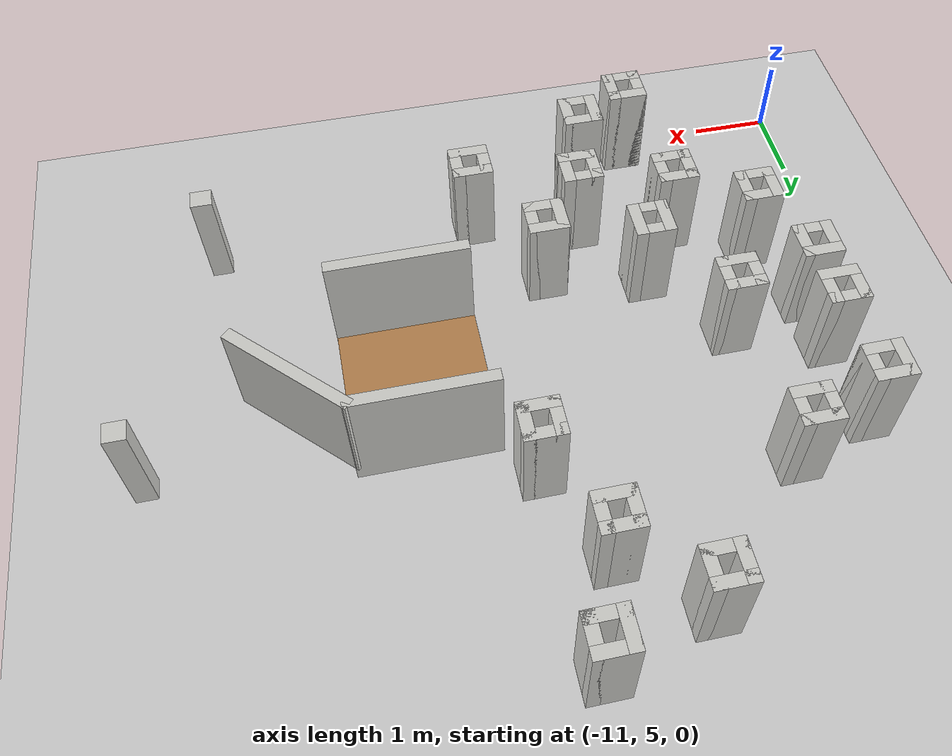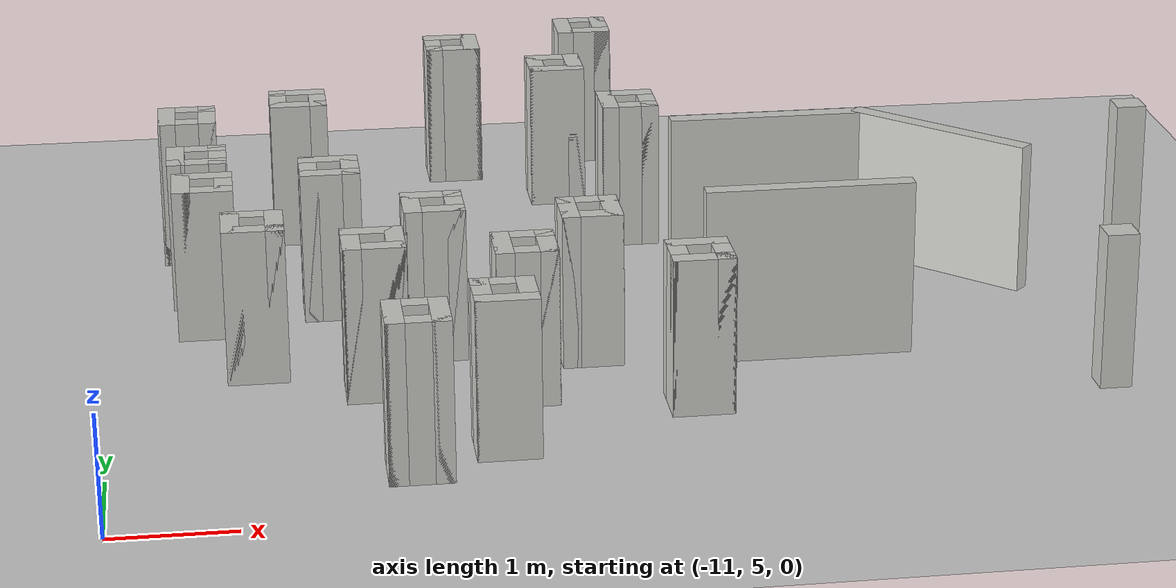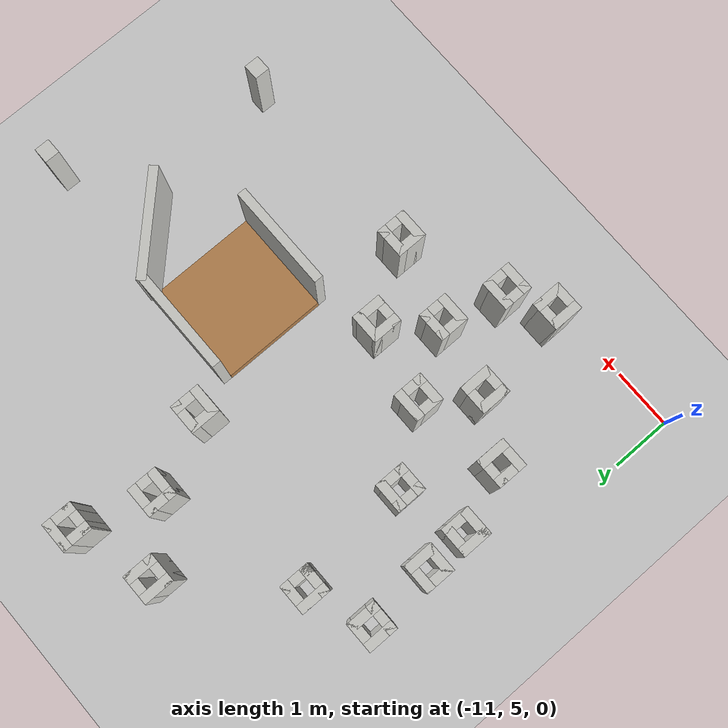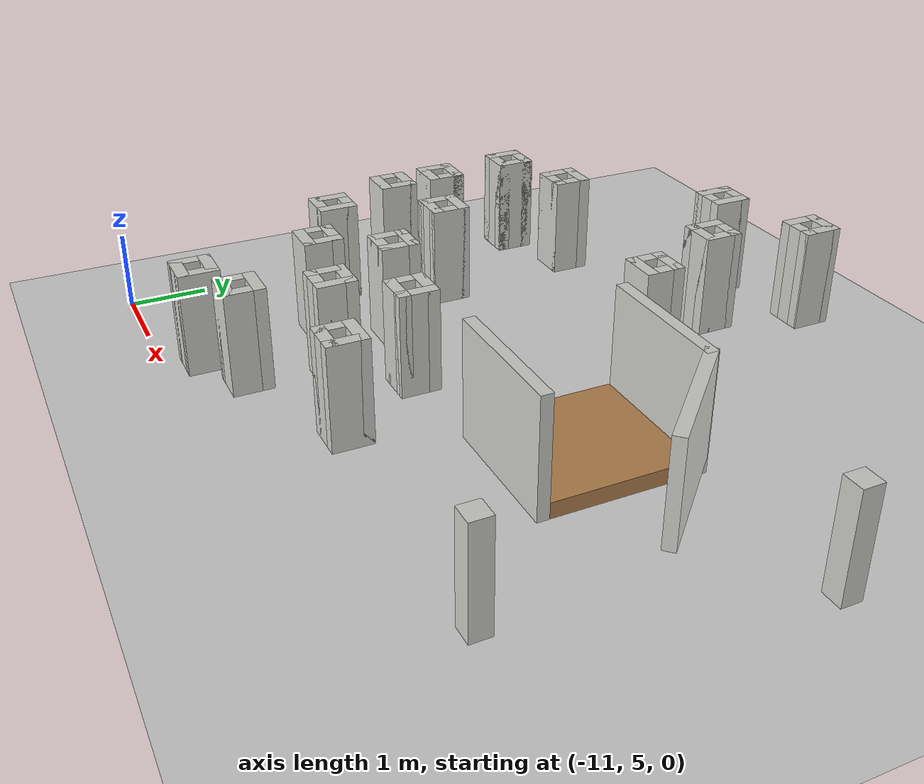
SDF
<sdf version="1.6">
 <world name="default">
  <model name="ground_plane">
   <static>1</static>
   <link name="link">
    <collision name="collision">
     <geometry><plane><normal>0 0 1</normal><size>100 100</size></plane></geometry>
     <surface><friction><ode><mu>100</mu><mu2>50</mu2></ode></friction></surface>
    </collision>
    <visual name="visual">
     <cast_shadows>0</cast_shadows>
     <geometry><plane><normal>0 0 1</normal><size>100 100</size></plane></geometry>
     <material>
      <script><uri>file://media/materials/scripts/gazebo.material</uri><name>Gazebo/Grey</name></script>
     </material>
    </visual>
   </link>
  </model>
  <model name="nerve_straight_clone_0_clone_0_clone_0">
   <pose>-5.22994 8.71415 0 0 0 -1.5708</pose>
   <link name="Wall_0">
    <collision name="Wall_0_Collision">
     <geometry><box><size>1.76 1.75 0.2</size></box></geometry>
     <pose>0 0 0.1 0 -0 0</pose>
    </collision>
    <visual name="Wall_0_Visual">
     <pose>0 0 0.1 0 -0 0</pose>
     <geometry><box><size>1.76 1.75 0.2</size></box></geometry>
     <material>
      <script><uri>file://media/materials/scripts/gazebo.material</uri><name>Gazebo/Wood</name></script>
      <ambient>1 0.764706 0.305882 1</ambient>
     </material>
    </visual>
    <pose>0.005 -0.002 0 0 -0 3.14159</pose>
   </link>
   <link name="Wall_2">
    <collision name="Wall_2_Collision">
     <geometry><box><size>1.75 0.15 1.5</size></box></geometry>
     <pose>0 0 0.75 0 -0 0</pose>
    </collision>
    <visual name="Wall_2_Visual">
     <pose>0 0 0.75 0 -0 0</pose>
     <geometry><box><size>1.75 0.15 1.5</size></box></geometry>
     <material>
      <script><uri>file://media/materials/scripts/gazebo.material</uri><name>Gazebo/CeilingTiled</name></script>
      <ambient>1 0.764706 0.305882 1</ambient>
     </material>
    </visual>
    <pose>-0.955 0.002 0 0 0 -1.5708</pose>
   </link>
   <link name="Wall_4">
    <collision name="Wall_4_Collision">
     <geometry><box><size>1.75 0.15 1.5</size></box></geometry>
     <pose>0 0 0.75 0 -0 0</pose>
    </collision>
    <visual name="Wall_4_Visual">
     <pose>0 0 0.75 0 -0 0</pose>
     <geometry><box><size>1.75 0.15 1.5</size></box></geometry>
     <material>
      <script><uri>file://media/materials/scripts/gazebo.material</uri><name>Gazebo/CeilingTiled</name></script>
      <ambient>1 0.764706 0.305882 1</ambient>
     </material>
    </visual>
    <pose>0.955 0.002 0 0 0 -1.5708</pose>
   </link>
   <static>1</static>
  </model>
  <model name="nerve_obs_wall_full_clone_4">
   <pose>-3.82232 9.09799 0.2 0 0 -0.785398</pose>
   <link name="Wall_21">
    <collision name="Wall_21_Collision">
     <geometry><box><size>1.75 0.15 1.3</size></box></geometry>
     <pose>0 0 0.65 0 -0 0</pose>
    </collision>
    <visual name="Wall_21_Visual">
     <pose>0 0 0.65 0 -0 0</pose>
     <geometry><box><size>1.75 0.15 1.3</size></box></geometry>
     <material>
      <script><uri>file://media/materials/scripts/gazebo.material</uri><name>Gazebo/CeilingTiled</name></script>
      <ambient>1 0.764706 0.305882 1</ambient>
     </material>
    </visual>
   </link>
   <static>1</static>
  </model>
  <model name="nerve_obs_squarepillar_large">
   <pose>-7.09065 7.50735 0.2 0 -0 0</pose>
   <link name="Wall_31">
    <collision name="Wall_31_Collision">
     <geometry><box><size>0.5 0.15 1.3</size></box></geometry>
     <pose>0 0 0.65 0 -0 0</pose>
    </collision>
    <visual name="Wall_31_Visual">
     <pose>0 0 0.65 0 -0 0</pose>
     <geometry><box><size>0.5 0.15 1.3</size></box></geometry>
     <material>
      <script><uri>file://media/materials/scripts/gazebo.material</uri><name>Gazebo/CeilingTiled</name></script>
      <ambient>1 0.764706 0.305882 1</ambient>
     </material>
    </visual>
    <pose>-0.175 0 0 0 0 -1.5708</pose>
   </link>
   <link name="Wall_32">
    <collision name="Wall_32_Collision">
     <geometry><box><size>0.5 0.15 1.3</size></box></geometry>
     <pose>0 0 0.65 0 -0 0</pose>
    </collision>
    <visual name="Wall_32_Visual">
     <pose>0 0 0.65 0 -0 0</pose>
     <geometry><box><size>0.5 0.15 1.3</size></box></geometry>
     <material>
      <script><uri>file://media/materials/scripts/gazebo.material</uri><name>Gazebo/CeilingTiled</name></script>
      <ambient>1 0.764706 0.305882 1</ambient>
     </material>
    </visual>
    <pose>0 -0.175 0 0 -0 0</pose>
   </link>
   <link name="Wall_33">
    <collision name="Wall_33_Collision">
     <geometry><box><size>0.5 0.15 1.3</size></box></geometry>
     <pose>0 0 0.65 0 -0 0</pose>
    </collision>
    <visual name="Wall_33_Visual">
     <pose>0 0 0.65 0 -0 0</pose>
     <geometry><box><size>0.5 0.15 1.3</size></box></geometry>
     <material>
      <script><uri>file://media/materials/scripts/gazebo.material</uri><name>Gazebo/CeilingTiled</name></script>
      <ambient>1 0.764706 0.305882 1</ambient>
     </material>
    </visual>
    <pose>0.175 0 0 0 -0 1.5708</pose>
   </link>
   <link name="Wall_34">
    <collision name="Wall_34_Collision">
     <geometry><box><size>0.5 0.15 1.3</size></box></geometry>
     <pose>0 0 0.65 0 -0 0</pose>
    </collision>
    <visual name="Wall_34_Visual">
     <pose>0 0 0.65 0 -0 0</pose>
     <geometry><box><size>0.5 0.15 1.3</size></box></geometry>
     <material>
      <script><uri>file://media/materials/scripts/gazebo.material</uri><name>Gazebo/CeilingTiled</name></script>
      <ambient>1 0.764706 0.305882 1</ambient>
     </material>
    </visual>
    <pose>0 0.175 0 0 -0 3.14159</pose>
   </link>
   <static>1</static>
  </model>
  <model name="nerve_obs_squarepillar_large_clone">
   <pose>-6.36147 6.39902 0.2 0 -0 0</pose>
   <link name="Wall_31">
    <collision name="Wall_31_Collision">
     <geometry><box><size>0.5 0.15 1.3</size></box></geometry>
     <pose>0 0 0.65 0 -0 0</pose>
    </collision>
    <visual name="Wall_31_Visual">
     <pose>0 0 0.65 0 -0 0</pose>
     <geometry><box><size>0.5 0.15 1.3</size></box></geometry>
     <material>
      <script><uri>file://media/materials/scripts/gazebo.material</uri><name>Gazebo/CeilingTiled</name></script>
      <ambient>1 0.764706 0.305882 1</ambient>
     </material>
    </visual>
    <pose>-0.175 0 0 0 0 -1.5708</pose>
   </link>
   <link name="Wall_32">
    <collision name="Wall_32_Collision">
     <geometry><box><size>0.5 0.15 1.3</size></box></geometry>
     <pose>0 0 0.65 0 -0 0</pose>
    </collision>
    <visual name="Wall_32_Visual">
     <pose>0 0 0.65 0 -0 0</pose>
     <geometry><box><size>0.5 0.15 1.3</size></box></geometry>
     <material>
      <script><uri>file://media/materials/scripts/gazebo.material</uri><name>Gazebo/CeilingTiled</name></script>
      <ambient>1 0.764706 0.305882 1</ambient>
     </material>
    </visual>
    <pose>0 -0.175 0 0 -0 0</pose>
   </link>
   <link name="Wall_33">
    <collision name="Wall_33_Collision">
     <geometry><box><size>0.5 0.15 1.3</size></box></geometry>
     <pose>0 0 0.65 0 -0 0</pose>
    </collision>
    <visual name="Wall_33_Visual">
     <pose>0 0 0.65 0 -0 0</pose>
     <geometry><box><size>0.5 0.15 1.3</size></box></geometry>
     <material>
      <script><uri>file://media/materials/scripts/gazebo.material</uri><name>Gazebo/CeilingTiled</name></script>
      <ambient>1 0.764706 0.305882 1</ambient>
     </material>
    </visual>
    <pose>0.175 0 0 0 -0 1.5708</pose>
   </link>
   <link name="Wall_34">
    <collision name="Wall_34_Collision">
     <geometry><box><size>0.5 0.15 1.3</size></box></geometry>
     <pose>0 0 0.65 0 -0 0</pose>
    </collision>
    <visual name="Wall_34_Visual">
     <pose>0 0 0.65 0 -0 0</pose>
     <geometry><box><size>0.5 0.15 1.3</size></box></geometry>
     <material>
      <script><uri>file://media/materials/scripts/gazebo.material</uri><name>Gazebo/CeilingTiled</name></script>
      <ambient>1 0.764706 0.305882 1</ambient>
     </material>
    </visual>
    <pose>0 0.175 0 0 -0 3.14159</pose>
   </link>
   <static>1</static>
  </model>
  <model name="nerve_obs_squarepillar_large_clone_0">
   <pose>-9.30834 10.7359 0.2 0 -0 0</pose>
   <link name="Wall_31">
    <collision name="Wall_31_Collision">
     <geometry><box><size>0.5 0.15 1.3</size></box></geometry>
     <pose>0 0 0.65 0 -0 0</pose>
    </collision>
    <visual name="Wall_31_Visual">
     <pose>0 0 0.65 0 -0 0</pose>
     <geometry><box><size>0.5 0.15 1.3</size></box></geometry>
     <material>
      <script><uri>file://media/materials/scripts/gazebo.material</uri><name>Gazebo/CeilingTiled</name></script>
      <ambient>1 0.764706 0.305882 1</ambient>
     </material>
    </visual>
    <pose>-0.175 0 0 0 0 -1.5708</pose>
   </link>
   <link name="Wall_32">
    <collision name="Wall_32_Collision">
     <geometry><box><size>0.5 0.15 1.3</size></box></geometry>
     <pose>0 0 0.65 0 -0 0</pose>
    </collision>
    <visual name="Wall_32_Visual">
     <pose>0 0 0.65 0 -0 0</pose>
     <geometry><box><size>0.5 0.15 1.3</size></box></geometry>
     <material>
      <script><uri>file://media/materials/scripts/gazebo.material</uri><name>Gazebo/CeilingTiled</name></script>
      <ambient>1 0.764706 0.305882 1</ambient>
     </material>
    </visual>
    <pose>0 -0.175 0 0 -0 0</pose>
   </link>
   <link name="Wall_33">
    <collision name="Wall_33_Collision">
     <geometry><box><size>0.5 0.15 1.3</size></box></geometry>
     <pose>0 0 0.65 0 -0 0</pose>
    </collision>
    <visual name="Wall_33_Visual">
     <pose>0 0 0.65 0 -0 0</pose>
     <geometry><box><size>0.5 0.15 1.3</size></box></geometry>
     <material>
      <script><uri>file://media/materials/scripts/gazebo.material</uri><name>Gazebo/CeilingTiled</name></script>
      <ambient>1 0.764706 0.305882 1</ambient>
     </material>
    </visual>
    <pose>0.175 0 0 0 -0 1.5708</pose>
   </link>
   <link name="Wall_34">
    <collision name="Wall_34_Collision">
     <geometry><box><size>0.5 0.15 1.3</size></box></geometry>
     <pose>0 0 0.65 0 -0 0</pose>
    </collision>
    <visual name="Wall_34_Visual">
     <pose>0 0 0.65 0 -0 0</pose>
     <geometry><box><size>0.5 0.15 1.3</size></box></geometry>
     <material>
      <script><uri>file://media/materials/scripts/gazebo.material</uri><name>Gazebo/CeilingTiled</name></script>
      <ambient>1 0.764706 0.305882 1</ambient>
     </material>
    </visual>
    <pose>0 0.175 0 0 -0 3.14159</pose>
   </link>
   <static>1</static>
  </model>
  <model name="nerve_obs_squarepillar_large_clone_2">
   <pose>-9.12124 8.82989 0.2 0 -0 0</pose>
   <link name="Wall_31">
    <collision name="Wall_31_Collision">
     <geometry><box><size>0.5 0.15 1.3</size></box></geometry>
     <pose>0 0 0.65 0 -0 0</pose>
    </collision>
    <visual name="Wall_31_Visual">
     <pose>0 0 0.65 0 -0 0</pose>
     <geometry><box><size>0.5 0.15 1.3</size></box></geometry>
     <material>
      <script><uri>file://media/materials/scripts/gazebo.material</uri><name>Gazebo/CeilingTiled</name></script>
      <ambient>1 0.764706 0.305882 1</ambient>
     </material>
    </visual>
    <pose>-0.175 0 0 0 0 -1.5708</pose>
   </link>
   <link name="Wall_32">
    <collision name="Wall_32_Collision">
     <geometry><box><size>0.5 0.15 1.3</size></box></geometry>
     <pose>0 0 0.65 0 -0 0</pose>
    </collision>
    <visual name="Wall_32_Visual">
     <pose>0 0 0.65 0 -0 0</pose>
     <geometry><box><size>0.5 0.15 1.3</size></box></geometry>
     <material>
      <script><uri>file://media/materials/scripts/gazebo.material</uri><name>Gazebo/CeilingTiled</name></script>
      <ambient>1 0.764706 0.305882 1</ambient>
     </material>
    </visual>
    <pose>0 -0.175 0 0 -0 0</pose>
   </link>
   <link name="Wall_33">
    <collision name="Wall_33_Collision">
     <geometry><box><size>0.5 0.15 1.3</size></box></geometry>
     <pose>0 0 0.65 0 -0 0</pose>
    </collision>
    <visual name="Wall_33_Visual">
     <pose>0 0 0.65 0 -0 0</pose>
     <geometry><box><size>0.5 0.15 1.3</size></box></geometry>
     <material>
      <script><uri>file://media/materials/scripts/gazebo.material</uri><name>Gazebo/CeilingTiled</name></script>
      <ambient>1 0.764706 0.305882 1</ambient>
     </material>
    </visual>
    <pose>0.175 0 0 0 -0 1.5708</pose>
   </link>
   <link name="Wall_34">
    <collision name="Wall_34_Collision">
     <geometry><box><size>0.5 0.15 1.3</size></box></geometry>
     <pose>0 0 0.65 0 -0 0</pose>
    </collision>
    <visual name="Wall_34_Visual">
     <pose>0 0 0.65 0 -0 0</pose>
     <geometry><box><size>0.5 0.15 1.3</size></box></geometry>
     <material>
      <script><uri>file://media/materials/scripts/gazebo.material</uri><name>Gazebo/CeilingTiled</name></script>
      <ambient>1 0.764706 0.305882 1</ambient>
     </material>
    </visual>
    <pose>0 0.175 0 0 -0 3.14159</pose>
   </link>
   <static>1</static>
  </model>
  <model name="nerve_obs_squarepillar_large_clone_3">
   <pose>-8.33446 7.80328 0.2 0 -0 0</pose>
   <link name="Wall_31">
    <collision name="Wall_31_Collision">
     <geometry><box><size>0.5 0.15 1.3</size></box></geometry>
     <pose>0 0 0.65 0 -0 0</pose>
    </collision>
    <visual name="Wall_31_Visual">
     <pose>0 0 0.65 0 -0 0</pose>
     <geometry><box><size>0.5 0.15 1.3</size></box></geometry>
     <material>
      <script><uri>file://media/materials/scripts/gazebo.material</uri><name>Gazebo/CeilingTiled</name></script>
      <ambient>1 0.764706 0.305882 1</ambient>
     </material>
    </visual>
    <pose>-0.175 0 0 0 0 -1.5708</pose>
   </link>
   <link name="Wall_32">
    <collision name="Wall_32_Collision">
     <geometry><box><size>0.5 0.15 1.3</size></box></geometry>
     <pose>0 0 0.65 0 -0 0</pose>
    </collision>
    <visual name="Wall_32_Visual">
     <pose>0 0 0.65 0 -0 0</pose>
     <geometry><box><size>0.5 0.15 1.3</size></box></geometry>
     <material>
      <script><uri>file://media/materials/scripts/gazebo.material</uri><name>Gazebo/CeilingTiled</name></script>
      <ambient>1 0.764706 0.305882 1</ambient>
     </material>
    </visual>
    <pose>0 -0.175 0 0 -0 0</pose>
   </link>
   <link name="Wall_33">
    <collision name="Wall_33_Collision">
     <geometry><box><size>0.5 0.15 1.3</size></box></geometry>
     <pose>0 0 0.65 0 -0 0</pose>
    </collision>
    <visual name="Wall_33_Visual">
     <pose>0 0 0.65 0 -0 0</pose>
     <geometry><box><size>0.5 0.15 1.3</size></box></geometry>
     <material>
      <script><uri>file://media/materials/scripts/gazebo.material</uri><name>Gazebo/CeilingTiled</name></script>
      <ambient>1 0.764706 0.305882 1</ambient>
     </material>
    </visual>
    <pose>0.175 0 0 0 -0 1.5708</pose>
   </link>
   <link name="Wall_34">
    <collision name="Wall_34_Collision">
     <geometry><box><size>0.5 0.15 1.3</size></box></geometry>
     <pose>0 0 0.65 0 -0 0</pose>
    </collision>
    <visual name="Wall_34_Visual">
     <pose>0 0 0.65 0 -0 0</pose>
     <geometry><box><size>0.5 0.15 1.3</size></box></geometry>
     <material>
      <script><uri>file://media/materials/scripts/gazebo.material</uri><name>Gazebo/CeilingTiled</name></script>
      <ambient>1 0.764706 0.305882 1</ambient>
     </material>
    </visual>
    <pose>0 0.175 0 0 -0 3.14159</pose>
   </link>
   <static>1</static>
  </model>
  <model name="nerve_obs_squarepillar_large_clone_4">
   <pose>-8.86642 7.01573 0.2 0 -0 0</pose>
   <link name="Wall_31">
    <collision name="Wall_31_Collision">
     <geometry><box><size>0.5 0.15 1.3</size></box></geometry>
     <pose>0 0 0.65 0 -0 0</pose>
    </collision>
    <visual name="Wall_31_Visual">
     <pose>0 0 0.65 0 -0 0</pose>
     <geometry><box><size>0.5 0.15 1.3</size></box></geometry>
     <material>
      <script><uri>file://media/materials/scripts/gazebo.material</uri><name>Gazebo/CeilingTiled</name></script>
      <ambient>1 0.764706 0.305882 1</ambient>
     </material>
    </visual>
    <pose>-0.175 0 0 0 0 -1.5708</pose>
   </link>
   <link name="Wall_32">
    <collision name="Wall_32_Collision">
     <geometry><box><size>0.5 0.15 1.3</size></box></geometry>
     <pose>0 0 0.65 0 -0 0</pose>
    </collision>
    <visual name="Wall_32_Visual">
     <pose>0 0 0.65 0 -0 0</pose>
     <geometry><box><size>0.5 0.15 1.3</size></box></geometry>
     <material>
      <script><uri>file://media/materials/scripts/gazebo.material</uri><name>Gazebo/CeilingTiled</name></script>
      <ambient>1 0.764706 0.305882 1</ambient>
     </material>
    </visual>
    <pose>0 -0.175 0 0 -0 0</pose>
   </link>
   <link name="Wall_33">
    <collision name="Wall_33_Collision">
     <geometry><box><size>0.5 0.15 1.3</size></box></geometry>
     <pose>0 0 0.65 0 -0 0</pose>
    </collision>
    <visual name="Wall_33_Visual">
     <pose>0 0 0.65 0 -0 0</pose>
     <geometry><box><size>0.5 0.15 1.3</size></box></geometry>
     <material>
      <script><uri>file://media/materials/scripts/gazebo.material</uri><name>Gazebo/CeilingTiled</name></script>
      <ambient>1 0.764706 0.305882 1</ambient>
     </material>
    </visual>
    <pose>0.175 0 0 0 -0 1.5708</pose>
   </link>
   <link name="Wall_34">
    <collision name="Wall_34_Collision">
     <geometry><box><size>0.5 0.15 1.3</size></box></geometry>
     <pose>0 0 0.65 0 -0 0</pose>
    </collision>
    <visual name="Wall_34_Visual">
     <pose>0 0 0.65 0 -0 0</pose>
     <geometry><box><size>0.5 0.15 1.3</size></box></geometry>
     <material>
      <script><uri>file://media/materials/scripts/gazebo.material</uri><name>Gazebo/CeilingTiled</name></script>
      <ambient>1 0.764706 0.305882 1</ambient>
     </material>
    </visual>
    <pose>0 0.175 0 0 -0 3.14159</pose>
   </link>
   <static>1</static>
  </model>
  <model name="nerve_obs_squarepillar_large_clone_5">
   <pose>-8.64189 5.42133 0.2 0 -0 0</pose>
   <link name="Wall_31">
    <collision name="Wall_31_Collision">
     <geometry><box><size>0.5 0.15 1.3</size></box></geometry>
     <pose>0 0 0.65 0 -0 0</pose>
    </collision>
    <visual name="Wall_31_Visual">
     <pose>0 0 0.65 0 -0 0</pose>
     <geometry><box><size>0.5 0.15 1.3</size></box></geometry>
     <material>
      <script><uri>file://media/materials/scripts/gazebo.material</uri><name>Gazebo/CeilingTiled</name></script>
      <ambient>1 0.764706 0.305882 1</ambient>
     </material>
    </visual>
    <pose>-0.175 0 0 0 0 -1.5708</pose>
   </link>
   <link name="Wall_32">
    <collision name="Wall_32_Collision">
     <geometry><box><size>0.5 0.15 1.3</size></box></geometry>
     <pose>0 0 0.65 0 -0 0</pose>
    </collision>
    <visual name="Wall_32_Visual">
     <pose>0 0 0.65 0 -0 0</pose>
     <geometry><box><size>0.5 0.15 1.3</size></box></geometry>
     <material>
      <script><uri>file://media/materials/scripts/gazebo.material</uri><name>Gazebo/CeilingTiled</name></script>
      <ambient>1 0.764706 0.305882 1</ambient>
     </material>
    </visual>
    <pose>0 -0.175 0 0 -0 0</pose>
   </link>
   <link name="Wall_33">
    <collision name="Wall_33_Collision">
     <geometry><box><size>0.5 0.15 1.3</size></box></geometry>
     <pose>0 0 0.65 0 -0 0</pose>
    </collision>
    <visual name="Wall_33_Visual">
     <pose>0 0 0.65 0 -0 0</pose>
     <geometry><box><size>0.5 0.15 1.3</size></box></geometry>
     <material>
      <script><uri>file://media/materials/scripts/gazebo.material</uri><name>Gazebo/CeilingTiled</name></script>
      <ambient>1 0.764706 0.305882 1</ambient>
     </material>
    </visual>
    <pose>0.175 0 0 0 -0 1.5708</pose>
   </link>
   <link name="Wall_34">
    <collision name="Wall_34_Collision">
     <geometry><box><size>0.5 0.15 1.3</size></box></geometry>
     <pose>0 0 0.65 0 -0 0</pose>
    </collision>
    <visual name="Wall_34_Visual">
     <pose>0 0 0.65 0 -0 0</pose>
     <geometry><box><size>0.5 0.15 1.3</size></box></geometry>
     <material>
      <script><uri>file://media/materials/scripts/gazebo.material</uri><name>Gazebo/CeilingTiled</name></script>
      <ambient>1 0.764706 0.305882 1</ambient>
     </material>
    </visual>
    <pose>0 0.175 0 0 -0 3.14159</pose>
   </link>
   <static>1</static>
  </model>
  <model name="nerve_obs_squarepillar_large_clone_11">
   <pose>-6.51462 12.6919 0.2 0 -0 0</pose>
   <link name="Wall_31">
    <collision name="Wall_31_Collision">
     <geometry><box><size>0.5 0.15 1.3</size></box></geometry>
     <pose>0 0 0.65 0 -0 0</pose>
    </collision>
    <visual name="Wall_31_Visual">
     <pose>0 0 0.65 0 -0 0</pose>
     <geometry><box><size>0.5 0.15 1.3</size></box></geometry>
     <material>
      <script><uri>file://media/materials/scripts/gazebo.material</uri><name>Gazebo/CeilingTiled</name></script>
      <ambient>1 0.764706 0.305882 1</ambient>
     </material>
    </visual>
    <pose>-0.175 0 0 0 0 -1.5708</pose>
   </link>
   <link name="Wall_32">
    <collision name="Wall_32_Collision">
     <geometry><box><size>0.5 0.15 1.3</size></box></geometry>
     <pose>0 0 0.65 0 -0 0</pose>
    </collision>
    <visual name="Wall_32_Visual">
     <pose>0 0 0.65 0 -0 0</pose>
     <geometry><box><size>0.5 0.15 1.3</size></box></geometry>
     <material>
      <script><uri>file://media/materials/scripts/gazebo.material</uri><name>Gazebo/CeilingTiled</name></script>
      <ambient>1 0.764706 0.305882 1</ambient>
     </material>
    </visual>
    <pose>0 -0.175 0 0 -0 0</pose>
   </link>
   <link name="Wall_33">
    <collision name="Wall_33_Collision">
     <geometry><box><size>0.5 0.15 1.3</size></box></geometry>
     <pose>0 0 0.65 0 -0 0</pose>
    </collision>
    <visual name="Wall_33_Visual">
     <pose>0 0 0.65 0 -0 0</pose>
     <geometry><box><size>0.5 0.15 1.3</size></box></geometry>
     <material>
      <script><uri>file://media/materials/scripts/gazebo.material</uri><name>Gazebo/CeilingTiled</name></script>
      <ambient>1 0.764706 0.305882 1</ambient>
     </material>
    </visual>
    <pose>0.175 0 0 0 -0 1.5708</pose>
   </link>
   <link name="Wall_34">
    <collision name="Wall_34_Collision">
     <geometry><box><size>0.5 0.15 1.3</size></box></geometry>
     <pose>0 0 0.65 0 -0 0</pose>
    </collision>
    <visual name="Wall_34_Visual">
     <pose>0 0 0.65 0 -0 0</pose>
     <geometry><box><size>0.5 0.15 1.3</size></box></geometry>
     <material>
      <script><uri>file://media/materials/scripts/gazebo.material</uri><name>Gazebo/CeilingTiled</name></script>
      <ambient>1 0.764706 0.305882 1</ambient>
     </material>
    </visual>
    <pose>0 0.175 0 0 -0 3.14159</pose>
   </link>
   <static>1</static>
  </model>
  <model name="nerve_obs_squarepillar_large_clone_12">
   <pose>-7.80044 12.2815 0.2 0 -0 0</pose>
   <link name="Wall_31">
    <collision name="Wall_31_Collision">
     <geometry><box><size>0.5 0.15 1.3</size></box></geometry>
     <pose>0 0 0.65 0 -0 0</pose>
    </collision>
    <visual name="Wall_31_Visual">
     <pose>0 0 0.65 0 -0 0</pose>
     <geometry><box><size>0.5 0.15 1.3</size></box></geometry>
     <material>
      <script><uri>file://media/materials/scripts/gazebo.material</uri><name>Gazebo/CeilingTiled</name></script>
      <ambient>1 0.764706 0.305882 1</ambient>
     </material>
    </visual>
    <pose>-0.175 0 0 0 0 -1.5708</pose>
   </link>
   <link name="Wall_32">
    <collision name="Wall_32_Collision">
     <geometry><box><size>0.5 0.15 1.3</size></box></geometry>
     <pose>0 0 0.65 0 -0 0</pose>
    </collision>
    <visual name="Wall_32_Visual">
     <pose>0 0 0.65 0 -0 0</pose>
     <geometry><box><size>0.5 0.15 1.3</size></box></geometry>
     <material>
      <script><uri>file://media/materials/scripts/gazebo.material</uri><name>Gazebo/CeilingTiled</name></script>
      <ambient>1 0.764706 0.305882 1</ambient>
     </material>
    </visual>
    <pose>0 -0.175 0 0 -0 0</pose>
   </link>
   <link name="Wall_33">
    <collision name="Wall_33_Collision">
     <geometry><box><size>0.5 0.15 1.3</size></box></geometry>
     <pose>0 0 0.65 0 -0 0</pose>
    </collision>
    <visual name="Wall_33_Visual">
     <pose>0 0 0.65 0 -0 0</pose>
     <geometry><box><size>0.5 0.15 1.3</size></box></geometry>
     <material>
      <script><uri>file://media/materials/scripts/gazebo.material</uri><name>Gazebo/CeilingTiled</name></script>
      <ambient>1 0.764706 0.305882 1</ambient>
     </material>
    </visual>
    <pose>0.175 0 0 0 -0 1.5708</pose>
   </link>
   <link name="Wall_34">
    <collision name="Wall_34_Collision">
     <geometry><box><size>0.5 0.15 1.3</size></box></geometry>
     <pose>0 0 0.65 0 -0 0</pose>
    </collision>
    <visual name="Wall_34_Visual">
     <pose>0 0 0.65 0 -0 0</pose>
     <geometry><box><size>0.5 0.15 1.3</size></box></geometry>
     <material>
      <script><uri>file://media/materials/scripts/gazebo.material</uri><name>Gazebo/CeilingTiled</name></script>
      <ambient>1 0.764706 0.305882 1</ambient>
     </material>
    </visual>
    <pose>0 0.175 0 0 -0 3.14159</pose>
   </link>
   <static>1</static>
  </model>
  <model name="nerve_obs_squarepillar_large_clone_15">
   <pose>-10.2143 9.26065 0.2 0 -0 0</pose>
   <link name="Wall_31">
    <collision name="Wall_31_Collision">
     <geometry><box><size>0.5 0.15 1.3</size></box></geometry>
     <pose>0 0 0.65 0 -0 0</pose>
    </collision>
    <visual name="Wall_31_Visual">
     <pose>0 0 0.65 0 -0 0</pose>
     <geometry><box><size>0.5 0.15 1.3</size></box></geometry>
     <material>
      <script><uri>file://media/materials/scripts/gazebo.material</uri><name>Gazebo/CeilingTiled</name></script>
      <ambient>1 0.764706 0.305882 1</ambient>
     </material>
    </visual>
    <pose>-0.175 0 0 0 0 -1.5708</pose>
   </link>
   <link name="Wall_32">
    <collision name="Wall_32_Collision">
     <geometry><box><size>0.5 0.15 1.3</size></box></geometry>
     <pose>0 0 0.65 0 -0 0</pose>
    </collision>
    <visual name="Wall_32_Visual">
     <pose>0 0 0.65 0 -0 0</pose>
     <geometry><box><size>0.5 0.15 1.3</size></box></geometry>
     <material>
      <script><uri>file://media/materials/scripts/gazebo.material</uri><name>Gazebo/CeilingTiled</name></script>
      <ambient>1 0.764706 0.305882 1</ambient>
     </material>
    </visual>
    <pose>0 -0.175 0 0 -0 0</pose>
   </link>
   <link name="Wall_33">
    <collision name="Wall_33_Collision">
     <geometry><box><size>0.5 0.15 1.3</size></box></geometry>
     <pose>0 0 0.65 0 -0 0</pose>
    </collision>
    <visual name="Wall_33_Visual">
     <pose>0 0 0.65 0 -0 0</pose>
     <geometry><box><size>0.5 0.15 1.3</size></box></geometry>
     <material>
      <script><uri>file://media/materials/scripts/gazebo.material</uri><name>Gazebo/CeilingTiled</name></script>
      <ambient>1 0.764706 0.305882 1</ambient>
     </material>
    </visual>
    <pose>0.175 0 0 0 -0 1.5708</pose>
   </link>
   <link name="Wall_34">
    <collision name="Wall_34_Collision">
     <geometry><box><size>0.5 0.15 1.3</size></box></geometry>
     <pose>0 0 0.65 0 -0 0</pose>
    </collision>
    <visual name="Wall_34_Visual">
     <pose>0 0 0.65 0 -0 0</pose>
     <geometry><box><size>0.5 0.15 1.3</size></box></geometry>
     <material>
      <script><uri>file://media/materials/scripts/gazebo.material</uri><name>Gazebo/CeilingTiled</name></script>
      <ambient>1 0.764706 0.305882 1</ambient>
     </material>
    </visual>
    <pose>0 0.175 0 0 -0 3.14159</pose>
   </link>
   <static>1</static>
  </model>
  <model name="nerve_obs_squarepillar_large_clone_16">
   <pose>-10.2904 10.3693 0.2 0 -0 0</pose>
   <link name="Wall_31">
    <collision name="Wall_31_Collision">
     <geometry><box><size>0.5 0.15 1.3</size></box></geometry>
     <pose>0 0 0.65 0 -0 0</pose>
    </collision>
    <visual name="Wall_31_Visual">
     <pose>0 0 0.65 0 -0 0</pose>
     <geometry><box><size>0.5 0.15 1.3</size></box></geometry>
     <material>
      <script><uri>file://media/materials/scripts/gazebo.material</uri><name>Gazebo/CeilingTiled</name></script>
      <ambient>1 0.764706 0.305882 1</ambient>
     </material>
    </visual>
    <pose>-0.175 0 0 0 0 -1.5708</pose>
   </link>
   <link name="Wall_32">
    <collision name="Wall_32_Collision">
     <geometry><box><size>0.5 0.15 1.3</size></box></geometry>
     <pose>0 0 0.65 0 -0 0</pose>
    </collision>
    <visual name="Wall_32_Visual">
     <pose>0 0 0.65 0 -0 0</pose>
     <geometry><box><size>0.5 0.15 1.3</size></box></geometry>
     <material>
      <script><uri>file://media/materials/scripts/gazebo.material</uri><name>Gazebo/CeilingTiled</name></script>
      <ambient>1 0.764706 0.305882 1</ambient>
     </material>
    </visual>
    <pose>0 -0.175 0 0 -0 0</pose>
   </link>
   <link name="Wall_33">
    <collision name="Wall_33_Collision">
     <geometry><box><size>0.5 0.15 1.3</size></box></geometry>
     <pose>0 0 0.65 0 -0 0</pose>
    </collision>
    <visual name="Wall_33_Visual">
     <pose>0 0 0.65 0 -0 0</pose>
     <geometry><box><size>0.5 0.15 1.3</size></box></geometry>
     <material>
      <script><uri>file://media/materials/scripts/gazebo.material</uri><name>Gazebo/CeilingTiled</name></script>
      <ambient>1 0.764706 0.305882 1</ambient>
     </material>
    </visual>
    <pose>0.175 0 0 0 -0 1.5708</pose>
   </link>
   <link name="Wall_34">
    <collision name="Wall_34_Collision">
     <geometry><box><size>0.5 0.15 1.3</size></box></geometry>
     <pose>0 0 0.65 0 -0 0</pose>
    </collision>
    <visual name="Wall_34_Visual">
     <pose>0 0 0.65 0 -0 0</pose>
     <geometry><box><size>0.5 0.15 1.3</size></box></geometry>
     <material>
      <script><uri>file://media/materials/scripts/gazebo.material</uri><name>Gazebo/CeilingTiled</name></script>
      <ambient>1 0.764706 0.305882 1</ambient>
     </material>
    </visual>
    <pose>0 0.175 0 0 -0 3.14159</pose>
   </link>
   <static>1</static>
  </model>
  <model name="nerve_obs_squarepillar_large_clone_17">
   <pose>-6.39783 10.3049 0.2 0 -0 0</pose>
   <link name="Wall_31">
    <collision name="Wall_31_Collision">
     <geometry><box><size>0.5 0.15 1.3</size></box></geometry>
     <pose>0 0 0.65 0 -0 0</pose>
    </collision>
    <visual name="Wall_31_Visual">
     <pose>0 0 0.65 0 -0 0</pose>
     <geometry><box><size>0.5 0.15 1.3</size></box></geometry>
     <material>
      <script><uri>file://media/materials/scripts/gazebo.material</uri><name>Gazebo/CeilingTiled</name></script>
      <ambient>1 0.764706 0.305882 1</ambient>
     </material>
    </visual>
    <pose>-0.175 0 0 0 0 -1.5708</pose>
   </link>
   <link name="Wall_32">
    <collision name="Wall_32_Collision">
     <geometry><box><size>0.5 0.15 1.3</size></box></geometry>
     <pose>0 0 0.65 0 -0 0</pose>
    </collision>
    <visual name="Wall_32_Visual">
     <pose>0 0 0.65 0 -0 0</pose>
     <geometry><box><size>0.5 0.15 1.3</size></box></geometry>
     <material>
      <script><uri>file://media/materials/scripts/gazebo.material</uri><name>Gazebo/CeilingTiled</name></script>
      <ambient>1 0.764706 0.305882 1</ambient>
     </material>
    </visual>
    <pose>0 -0.175 0 0 -0 0</pose>
   </link>
   <link name="Wall_33">
    <collision name="Wall_33_Collision">
     <geometry><box><size>0.5 0.15 1.3</size></box></geometry>
     <pose>0 0 0.65 0 -0 0</pose>
    </collision>
    <visual name="Wall_33_Visual">
     <pose>0 0 0.65 0 -0 0</pose>
     <geometry><box><size>0.5 0.15 1.3</size></box></geometry>
     <material>
      <script><uri>file://media/materials/scripts/gazebo.material</uri><name>Gazebo/CeilingTiled</name></script>
      <ambient>1 0.764706 0.305882 1</ambient>
     </material>
    </visual>
    <pose>0.175 0 0 0 -0 1.5708</pose>
   </link>
   <link name="Wall_34">
    <collision name="Wall_34_Collision">
     <geometry><box><size>0.5 0.15 1.3</size></box></geometry>
     <pose>0 0 0.65 0 -0 0</pose>
    </collision>
    <visual name="Wall_34_Visual">
     <pose>0 0 0.65 0 -0 0</pose>
     <geometry><box><size>0.5 0.15 1.3</size></box></geometry>
     <material>
      <script><uri>file://media/materials/scripts/gazebo.material</uri><name>Gazebo/CeilingTiled</name></script>
      <ambient>1 0.764706 0.305882 1</ambient>
     </material>
    </visual>
    <pose>0 0.175 0 0 -0 3.14159</pose>
   </link>
   <static>1</static>
  </model>
  <model name="nerve_obs_squarepillar_large_clone_18">
   <pose>-6.91212 11.4966 0.2 0 -0 0</pose>
   <link name="Wall_31">
    <collision name="Wall_31_Collision">
     <geometry><box><size>0.5 0.15 1.3</size></box></geometry>
     <pose>0 0 0.65 0 -0 0</pose>
    </collision>
    <visual name="Wall_31_Visual">
     <pose>0 0 0.65 0 -0 0</pose>
     <geometry><box><size>0.5 0.15 1.3</size></box></geometry>
     <material>
      <script><uri>file://media/materials/scripts/gazebo.material</uri><name>Gazebo/CeilingTiled</name></script>
      <ambient>1 0.764706 0.305882 1</ambient>
     </material>
    </visual>
    <pose>-0.175 0 0 0 0 -1.5708</pose>
   </link>
   <link name="Wall_32">
    <collision name="Wall_32_Collision">
     <geometry><box><size>0.5 0.15 1.3</size></box></geometry>
     <pose>0 0 0.65 0 -0 0</pose>
    </collision>
    <visual name="Wall_32_Visual">
     <pose>0 0 0.65 0 -0 0</pose>
     <geometry><box><size>0.5 0.15 1.3</size></box></geometry>
     <material>
      <script><uri>file://media/materials/scripts/gazebo.material</uri><name>Gazebo/CeilingTiled</name></script>
      <ambient>1 0.764706 0.305882 1</ambient>
     </material>
    </visual>
    <pose>0 -0.175 0 0 -0 0</pose>
   </link>
   <link name="Wall_33">
    <collision name="Wall_33_Collision">
     <geometry><box><size>0.5 0.15 1.3</size></box></geometry>
     <pose>0 0 0.65 0 -0 0</pose>
    </collision>
    <visual name="Wall_33_Visual">
     <pose>0 0 0.65 0 -0 0</pose>
     <geometry><box><size>0.5 0.15 1.3</size></box></geometry>
     <material>
      <script><uri>file://media/materials/scripts/gazebo.material</uri><name>Gazebo/CeilingTiled</name></script>
      <ambient>1 0.764706 0.305882 1</ambient>
     </material>
    </visual>
    <pose>0.175 0 0 0 -0 1.5708</pose>
   </link>
   <link name="Wall_34">
    <collision name="Wall_34_Collision">
     <geometry><box><size>0.5 0.15 1.3</size></box></geometry>
     <pose>0 0 0.65 0 -0 0</pose>
    </collision>
    <visual name="Wall_34_Visual">
     <pose>0 0 0.65 0 -0 0</pose>
     <geometry><box><size>0.5 0.15 1.3</size></box></geometry>
     <material>
      <script><uri>file://media/materials/scripts/gazebo.material</uri><name>Gazebo/CeilingTiled</name></script>
      <ambient>1 0.764706 0.305882 1</ambient>
     </material>
    </visual>
    <pose>0 0.175 0 0 -0 3.14159</pose>
   </link>
   <static>1</static>
  </model>
  <model name="nerve_obs_squarepillar_large_clone_20">
   <pose>-7.95187 5.76572 0.2 0 -0 0</pose>
   <link name="Wall_31">
    <collision name="Wall_31_Collision">
     <geometry><box><size>0.5 0.15 1.3</size></box></geometry>
     <pose>0 0 0.65 0 -0 0</pose>
    </collision>
    <visual name="Wall_31_Visual">
     <pose>0 0 0.65 0 -0 0</pose>
     <geometry><box><size>0.5 0.15 1.3</size></box></geometry>
     <material>
      <script><uri>file://media/materials/scripts/gazebo.material</uri><name>Gazebo/CeilingTiled</name></script>
      <ambient>1 0.764706 0.305882 1</ambient>
     </material>
    </visual>
    <pose>-0.175 0 0 0 0 -1.5708</pose>
   </link>
   <link name="Wall_32">
    <collision name="Wall_32_Collision">
     <geometry><box><size>0.5 0.15 1.3</size></box></geometry>
     <pose>0 0 0.65 0 -0 0</pose>
    </collision>
    <visual name="Wall_32_Visual">
     <pose>0 0 0.65 0 -0 0</pose>
     <geometry><box><size>0.5 0.15 1.3</size></box></geometry>
     <material>
      <script><uri>file://media/materials/scripts/gazebo.material</uri><name>Gazebo/CeilingTiled</name></script>
      <ambient>1 0.764706 0.305882 1</ambient>
     </material>
    </visual>
    <pose>0 -0.175 0 0 -0 0</pose>
   </link>
   <link name="Wall_33">
    <collision name="Wall_33_Collision">
     <geometry><box><size>0.5 0.15 1.3</size></box></geometry>
     <pose>0 0 0.65 0 -0 0</pose>
    </collision>
    <visual name="Wall_33_Visual">
     <pose>0 0 0.65 0 -0 0</pose>
     <geometry><box><size>0.5 0.15 1.3</size></box></geometry>
     <material>
      <script><uri>file://media/materials/scripts/gazebo.material</uri><name>Gazebo/CeilingTiled</name></script>
      <ambient>1 0.764706 0.305882 1</ambient>
     </material>
    </visual>
    <pose>0.175 0 0 0 -0 1.5708</pose>
   </link>
   <link name="Wall_34">
    <collision name="Wall_34_Collision">
     <geometry><box><size>0.5 0.15 1.3</size></box></geometry>
     <pose>0 0 0.65 0 -0 0</pose>
    </collision>
    <visual name="Wall_34_Visual">
     <pose>0 0 0.65 0 -0 0</pose>
     <geometry><box><size>0.5 0.15 1.3</size></box></geometry>
     <material>
      <script><uri>file://media/materials/scripts/gazebo.material</uri><name>Gazebo/CeilingTiled</name></script>
      <ambient>1 0.764706 0.305882 1</ambient>
     </material>
    </visual>
    <pose>0 0.175 0 0 -0 3.14159</pose>
   </link>
   <static>1</static>
  </model>
  <model name="nerve_obs_squarepillar_large_clone_21">
   <pose>-7.69646 6.76413 0.2 0 -0 0</pose>
   <link name="Wall_31">
    <collision name="Wall_31_Collision">
     <geometry><box><size>0.5 0.15 1.3</size></box></geometry>
     <pose>0 0 0.65 0 -0 0</pose>
    </collision>
    <visual name="Wall_31_Visual">
     <pose>0 0 0.65 0 -0 0</pose>
     <geometry><box><size>0.5 0.15 1.3</size></box></geometry>
     <material>
      <script><uri>file://media/materials/scripts/gazebo.material</uri><name>Gazebo/CeilingTiled</name></script>
      <ambient>1 0.764706 0.305882 1</ambient>
     </material>
    </visual>
    <pose>-0.175 0 0 0 0 -1.5708</pose>
   </link>
   <link name="Wall_32">
    <collision name="Wall_32_Collision">
     <geometry><box><size>0.5 0.15 1.3</size></box></geometry>
     <pose>0 0 0.65 0 -0 0</pose>
    </collision>
    <visual name="Wall_32_Visual">
     <pose>0 0 0.65 0 -0 0</pose>
     <geometry><box><size>0.5 0.15 1.3</size></box></geometry>
     <material>
      <script><uri>file://media/materials/scripts/gazebo.material</uri><name>Gazebo/CeilingTiled</name></script>
      <ambient>1 0.764706 0.305882 1</ambient>
     </material>
    </visual>
    <pose>0 -0.175 0 0 -0 0</pose>
   </link>
   <link name="Wall_33">
    <collision name="Wall_33_Collision">
     <geometry><box><size>0.5 0.15 1.3</size></box></geometry>
     <pose>0 0 0.65 0 -0 0</pose>
    </collision>
    <visual name="Wall_33_Visual">
     <pose>0 0 0.65 0 -0 0</pose>
     <geometry><box><size>0.5 0.15 1.3</size></box></geometry>
     <material>
      <script><uri>file://media/materials/scripts/gazebo.material</uri><name>Gazebo/CeilingTiled</name></script>
      <ambient>1 0.764706 0.305882 1</ambient>
     </material>
    </visual>
    <pose>0.175 0 0 0 -0 1.5708</pose>
   </link>
   <link name="Wall_34">
    <collision name="Wall_34_Collision">
     <geometry><box><size>0.5 0.15 1.3</size></box></geometry>
     <pose>0 0 0.65 0 -0 0</pose>
    </collision>
    <visual name="Wall_34_Visual">
     <pose>0 0 0.65 0 -0 0</pose>
     <geometry><box><size>0.5 0.15 1.3</size></box></geometry>
     <material>
      <script><uri>file://media/materials/scripts/gazebo.material</uri><name>Gazebo/CeilingTiled</name></script>
      <ambient>1 0.764706 0.305882 1</ambient>
     </material>
    </visual>
    <pose>0 0.175 0 0 -0 3.14159</pose>
   </link>
   <static>1</static>
  </model>
  <model name="nerve_obs_squarepillar_large_clone_30">
   <pose>-9.79269 7.53777 0.2 0 -0 0</pose>
   <link name="Wall_31">
    <collision name="Wall_31_Collision">
     <geometry><box><size>0.5 0.15 1.3</size></box></geometry>
     <pose>0 0 0.65 0 -0 0</pose>
    </collision>
    <visual name="Wall_31_Visual">
     <pose>0 0 0.65 0 -0 0</pose>
     <geometry><box><size>0.5 0.15 1.3</size></box></geometry>
     <material>
      <script><uri>file://media/materials/scripts/gazebo.material</uri><name>Gazebo/CeilingTiled</name></script>
      <ambient>1 0.764706 0.305882 1</ambient>
     </material>
    </visual>
    <pose>-0.175 0 0 0 0 -1.5708</pose>
   </link>
   <link name="Wall_32">
    <collision name="Wall_32_Collision">
     <geometry><box><size>0.5 0.15 1.3</size></box></geometry>
     <pose>0 0 0.65 0 -0 0</pose>
    </collision>
    <visual name="Wall_32_Visual">
     <pose>0 0 0.65 0 -0 0</pose>
     <geometry><box><size>0.5 0.15 1.3</size></box></geometry>
     <material>
      <script><uri>file://media/materials/scripts/gazebo.material</uri><name>Gazebo/CeilingTiled</name></script>
      <ambient>1 0.764706 0.305882 1</ambient>
     </material>
    </visual>
    <pose>0 -0.175 0 0 -0 0</pose>
   </link>
   <link name="Wall_33">
    <collision name="Wall_33_Collision">
     <geometry><box><size>0.5 0.15 1.3</size></box></geometry>
     <pose>0 0 0.65 0 -0 0</pose>
    </collision>
    <visual name="Wall_33_Visual">
     <pose>0 0 0.65 0 -0 0</pose>
     <geometry><box><size>0.5 0.15 1.3</size></box></geometry>
     <material>
      <script><uri>file://media/materials/scripts/gazebo.material</uri><name>Gazebo/CeilingTiled</name></script>
      <ambient>1 0.764706 0.305882 1</ambient>
     </material>
    </visual>
    <pose>0.175 0 0 0 -0 1.5708</pose>
   </link>
   <link name="Wall_34">
    <collision name="Wall_34_Collision">
     <geometry><box><size>0.5 0.15 1.3</size></box></geometry>
     <pose>0 0 0.65 0 -0 0</pose>
    </collision>
    <visual name="Wall_34_Visual">
     <pose>0 0 0.65 0 -0 0</pose>
     <geometry><box><size>0.5 0.15 1.3</size></box></geometry>
     <material>
      <script><uri>file://media/materials/scripts/gazebo.material</uri><name>Gazebo/CeilingTiled</name></script>
      <ambient>1 0.764706 0.305882 1</ambient>
     </material>
    </visual>
    <pose>0 0.175 0 0 -0 3.14159</pose>
   </link>
   <static>1</static>
  </model>
  <model name="nerve_obs_squarepillar_large_clone_31">
   <pose>-10.1766 8.54336 0.2 0 -0 0</pose>
   <link name="Wall_31">
    <collision name="Wall_31_Collision">
     <geometry><box><size>0.5 0.15 1.3</size></box></geometry>
     <pose>0 0 0.65 0 -0 0</pose>
    </collision>
    <visual name="Wall_31_Visual">
     <pose>0 0 0.65 0 -0 0</pose>
     <geometry><box><size>0.5 0.15 1.3</size></box></geometry>
     <material>
      <script><uri>file://media/materials/scripts/gazebo.material</uri><name>Gazebo/CeilingTiled</name></script>
      <ambient>1 0.764706 0.305882 1</ambient>
     </material>
    </visual>
    <pose>-0.175 0 0 0 0 -1.5708</pose>
   </link>
   <link name="Wall_32">
    <collision name="Wall_32_Collision">
     <geometry><box><size>0.5 0.15 1.3</size></box></geometry>
     <pose>0 0 0.65 0 -0 0</pose>
    </collision>
    <visual name="Wall_32_Visual">
     <pose>0 0 0.65 0 -0 0</pose>
     <geometry><box><size>0.5 0.15 1.3</size></box></geometry>
     <material>
      <script><uri>file://media/materials/scripts/gazebo.material</uri><name>Gazebo/CeilingTiled</name></script>
      <ambient>1 0.764706 0.305882 1</ambient>
     </material>
    </visual>
    <pose>0 -0.175 0 0 -0 0</pose>
   </link>
   <link name="Wall_33">
    <collision name="Wall_33_Collision">
     <geometry><box><size>0.5 0.15 1.3</size></box></geometry>
     <pose>0 0 0.65 0 -0 0</pose>
    </collision>
    <visual name="Wall_33_Visual">
     <pose>0 0 0.65 0 -0 0</pose>
     <geometry><box><size>0.5 0.15 1.3</size></box></geometry>
     <material>
      <script><uri>file://media/materials/scripts/gazebo.material</uri><name>Gazebo/CeilingTiled</name></script>
      <ambient>1 0.764706 0.305882 1</ambient>
     </material>
    </visual>
    <pose>0.175 0 0 0 -0 1.5708</pose>
   </link>
   <link name="Wall_34">
    <collision name="Wall_34_Collision">
     <geometry><box><size>0.5 0.15 1.3</size></box></geometry>
     <pose>0 0 0.65 0 -0 0</pose>
    </collision>
    <visual name="Wall_34_Visual">
     <pose>0 0 0.65 0 -0 0</pose>
     <geometry><box><size>0.5 0.15 1.3</size></box></geometry>
     <material>
      <script><uri>file://media/materials/scripts/gazebo.material</uri><name>Gazebo/CeilingTiled</name></script>
      <ambient>1 0.764706 0.305882 1</ambient>
     </material>
    </visual>
    <pose>0 0.175 0 0 -0 3.14159</pose>
   </link>
   <static>1</static>
  </model>
  <model name="nerve_obs_squarepillar_small_clone_41">
   <pose>-3.01551 6.34888 0.2 0 -0 0</pose>
   <link name="Wall_40">
    <collision name="Wall_40_Collision">
     <geometry><box><size>0.26 0.25 1.3</size></box></geometry>
     <pose>0 0 0.65 0 -0 0</pose>
    </collision>
    <visual name="Wall_40_Visual">
     <pose>0 0 0.65 0 -0 0</pose>
     <geometry><box><size>0.26 0.25 1.3</size></box></geometry>
     <material>
      <script><uri>file://media/materials/scripts/gazebo.material</uri><name>Gazebo/CeilingTiled</name></script>
      <ambient>1 0.764706 0.305882 1</ambient>
     </material>
    </visual>
   </link>
   <static>1</static>
  </model>
  <model name="nerve_obs_squarepillar_small_clone_43">
   <pose>-2.00421 9.53299 0.2 0 -0 0</pose>
   <link name="Wall_40">
    <collision name="Wall_40_Collision">
     <geometry><box><size>0.26 0.25 1.3</size></box></geometry>
     <pose>0 0 0.65 0 -0 0</pose>
    </collision>
    <visual name="Wall_40_Visual">
     <pose>0 0 0.65 0 -0 0</pose>
     <geometry><box><size>0.26 0.25 1.3</size></box></geometry>
     <material>
      <script><uri>file://media/materials/scripts/gazebo.material</uri><name>Gazebo/CeilingTiled</name></script>
      <ambient>1 0.764706 0.305882 1</ambient>
     </material>
    </visual>
   </link>
   <static>1</static>
  </model>
 </world>
</sdf>
